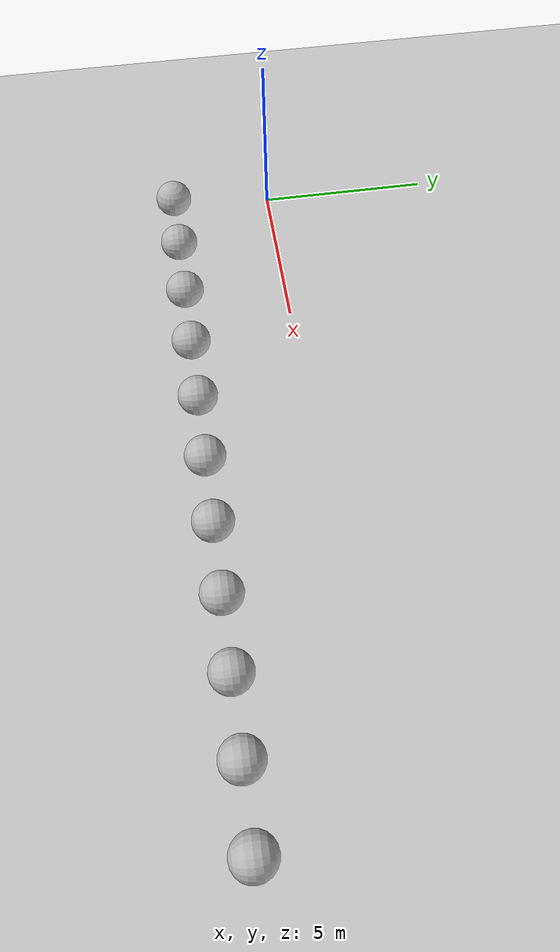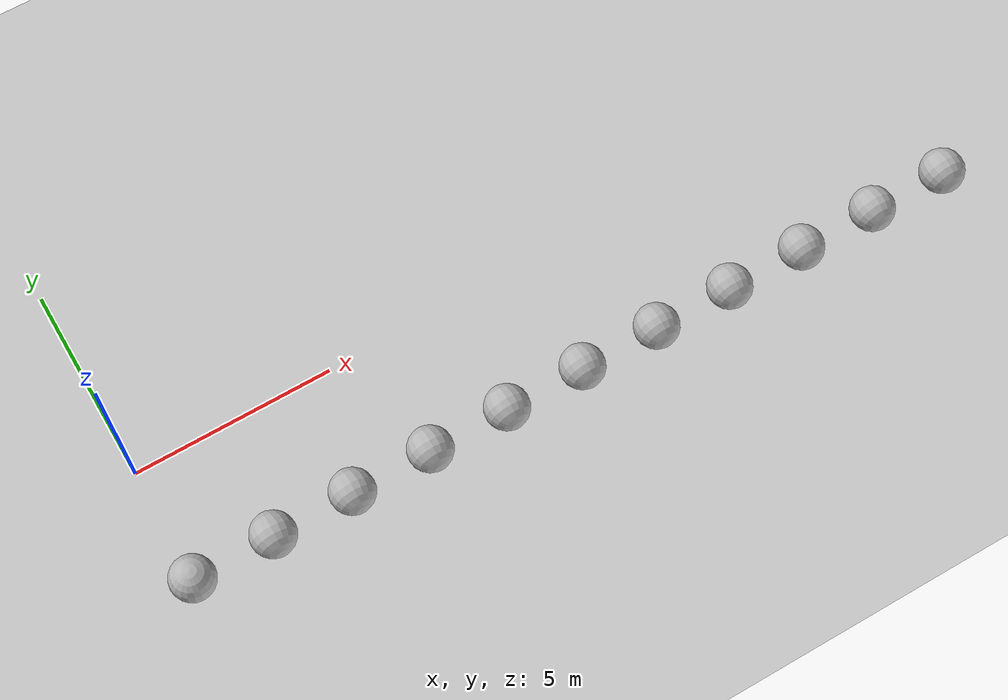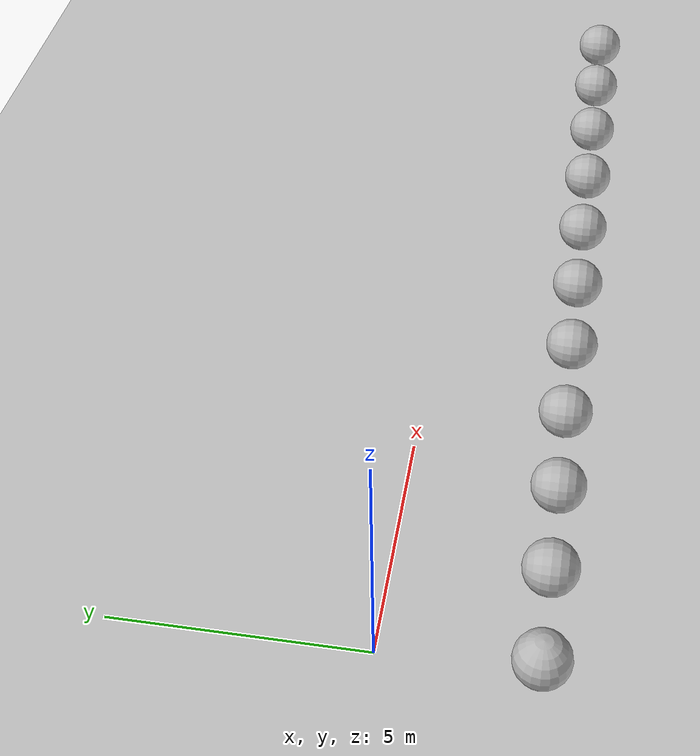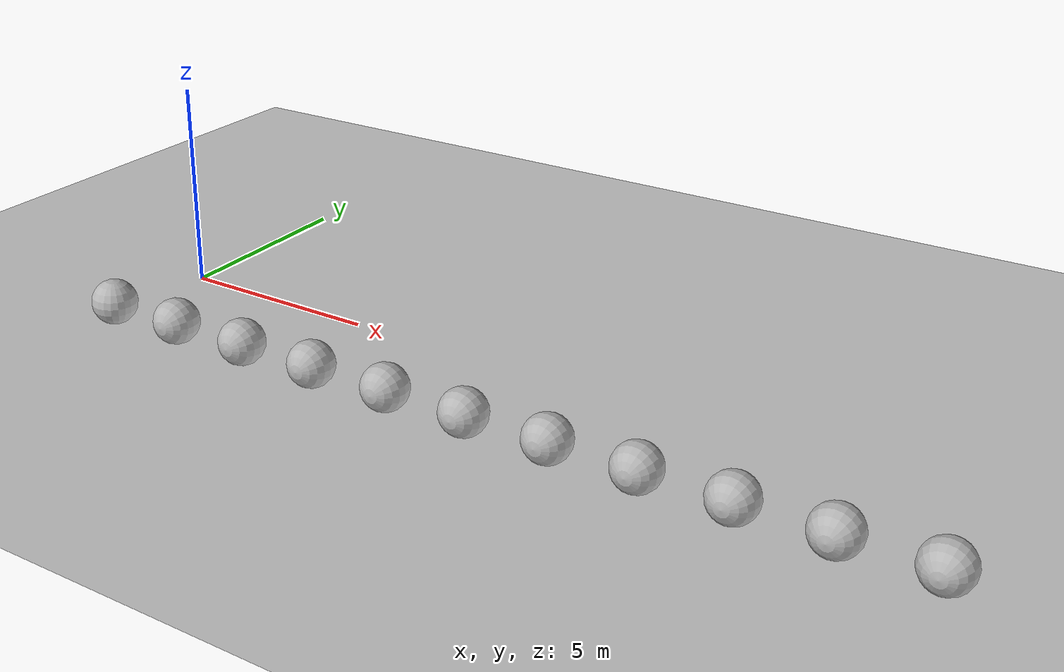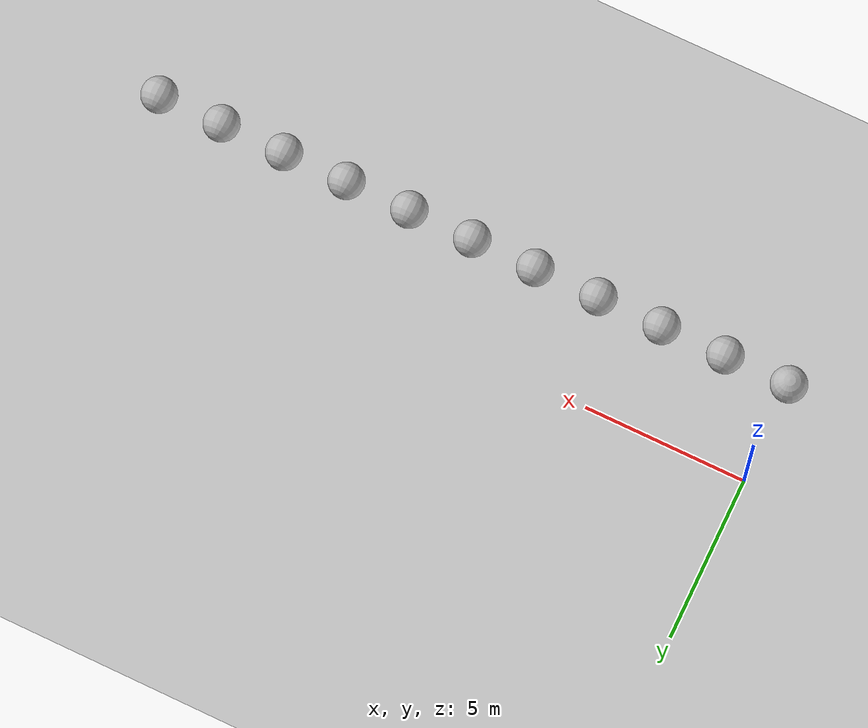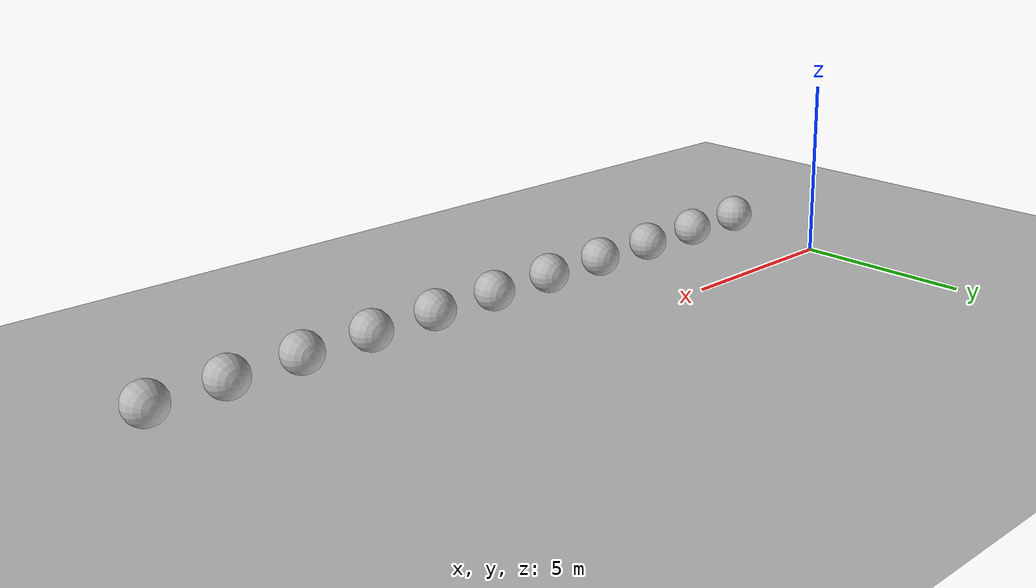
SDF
<?xml version="1.0" ?>
<sdf version="1.4">
  <!-- We use a custom world so that the camera angle is launched correctly -->

  <world name="default">
  <physics type='ode'>
    <max_step_size>0.01</max_step_size>
    <real_time_factor>1</real_time_factor>
    <real_time_update_rate>100</real_time_update_rate>
    <gravity>0 0 -9.8</gravity>
  </physics>

    <include>
      <uri>model://ground_plane</uri>
      <static>1</static>
      <link name='link'>
        <collision name='collision'>
          <geometry>
            <plane>
              <normal>0 0 1</normal>
              <size>100 100</size>
            </plane>
          </geometry>
          <surface>
            <friction>
              <ode>
                <mu>100</mu>
                <mu2>50</mu2>
              </ode>
            </friction>
            <bounce/>
            <contact>
              <ode/>
            </contact>
          </surface>
        </collision>
      </link>
    </include>

    <!-- Global light source -->
    <include>
      <uri>model://sun</uri>
    </include>

    <!-- All the digits -->
    <include>
      <uri>model://ball9</uri>
      <pose>0.0 -3.00 0.5 0.0 0.0 0.0</pose>
    </include>
    <include>
      <uri>model://ball0</uri>
      <pose>2.0 -3.00 0.5 1.5708 0.0 0.0</pose>
    </include>
    <include>
      <uri>model://ball1</uri>
      <pose>4.0 -3.00 0.5 1.5708 0.0 0.0</pose>
    </include>
    <include>
      <uri>model://ball2</uri>
      <pose>6.0 -3.00 0.5 1.5708 0.0 0.0</pose>
    </include>
    <include>
      <uri>model://ball3</uri>
      <pose>8.0 -3.00 0.5 1.5708 0.0 0.0</pose>
    </include>
    <include>
      <uri>model://ball4</uri>
      <pose>10.0 -3.00 0.5 1.5708 0.0 0.0</pose>
    </include>
    <include>
      <uri>model://ball5</uri>
      <pose>12.0 -3.00 0.5 1.5708 0.0 0.0</pose>
    </include>
    <include>
      <uri>model://ball6</uri>
      <pose>14.0 -3.00 0.5 1.5708 0.0 0.0</pose>
    </include>
    <include>
      <uri>model://ball7</uri>
      <pose>16.0 -3.00 0.5 1.5708 0.0 0.0</pose>
    </include>
    <include>
      <uri>model://ball8</uri>
      <pose>18.0 -3.00 0.5 1.5708 0.0 0.0</pose>
    </include>
    <include>
      <uri>model://ball9</uri>
      <pose>20.00 -3.00 0.5 1.5708 0.0 0.0</pose>
    </include>

    <gui fullscreen='0'>
      <camera name='user_camera'>
        <pose>4.927360 -4.376610 3.740080 0.000000 0.275643 2.356190</pose>
        <view_controller>orbit</view_controller>
      </camera>
    </gui>

  </world>
</sdf>

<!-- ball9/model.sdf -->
<sdf version="1.5">
  <model name="ball9">
    <link name="link">
      <inertial>
        <mass>2</mass>
        <inertia>
          <ixx>1</ixx>
          <ixy>0</ixy>
          <ixz>0</ixz>
          <iyy>1</iyy>
          <iyz>0</iyz>
          <izz>1</izz>
        </inertia>
      </inertial>
      <collision name="collision">
        <geometry>
          <sphere>
            <radius>0.55000</radius>
          </sphere>
        </geometry>
        <surface>
       <friction>
         <ode>
           <mu>0.72</mu>
           <mu2>0.72</mu2>
         </ode>
       </friction>
          <bounce/>
          <contact>
            <ode/>
          </contact>
     </surface>
      </collision>
      <visual name="visual">
         <geometry>
          <sphere>
            <radius>0.55000</radius>
          </sphere>
        </geometry>
        <material>
          <script>
            <uri>model://ball9/materials/scripts</uri>
            <uri>model://ball9/materials/textures</uri>
            <name>ball9/Diffuse</name>
          </script>
        </material>
      </visual>
    </link>
  </model>
</sdf>

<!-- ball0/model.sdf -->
<sdf version="1.5">
  <model name="ball0">
    <link name="link">
      <inertial>
        <mass>2</mass>
        <inertia>
          <ixx>1</ixx>
          <ixy>0</ixy>
          <ixz>0</ixz>
          <iyy>1</iyy>
          <iyz>0</iyz>
          <izz>1</izz>
        </inertia>
      </inertial>
      <collision name="collision">
        <geometry>
          <sphere>
            <radius>0.55000</radius>
          </sphere>
        </geometry>
        <surface>
       <friction>
         <ode>
           <mu>0.72</mu>
           <mu2>0.72</mu2>
         </ode>
       </friction>
          <bounce/>
          <contact>
            <ode/>
          </contact>
     </surface>
      </collision>
      <visual name="visual">
         <geometry>
          <sphere>
            <radius>0.55000</radius>
          </sphere>
        </geometry>
        <material>
          <script>
            <uri>model://ball0/materials/scripts</uri>
            <uri>model://ball0/materials/textures</uri>
            <name>ball0/Diffuse</name>
          </script>
        </material>
      </visual>
    </link>
  </model>
</sdf>

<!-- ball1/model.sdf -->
<sdf version="1.5">
  <model name="ball1">
    <link name="link">
      <inertial>
        <mass>2</mass>
        <inertia>
          <ixx>1</ixx>
          <ixy>0</ixy>
          <ixz>0</ixz>
          <iyy>1</iyy>
          <iyz>0</iyz>
          <izz>1</izz>
        </inertia>
      </inertial>
      <collision name="collision">
        <geometry>
          <sphere>
            <radius>0.55000</radius>
          </sphere>
        </geometry>
        <surface>
       <friction>
         <ode>
           <mu>0.72</mu>
           <mu2>0.72</mu2>
         </ode>
       </friction>
          <bounce/>
          <contact>
            <ode/>
          </contact>
     </surface>
      </collision>
      <visual name="visual">
         <geometry>
          <sphere>
            <radius>0.55000</radius>
          </sphere>
        </geometry>
        <material>
          <script>
            <uri>model://ball1/materials/scripts</uri>
            <uri>model://ball1/materials/textures</uri>
            <name>ball1/Diffuse</name>
          </script>
        </material>
      </visual>
    </link>
  </model>
</sdf>

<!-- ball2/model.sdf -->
<sdf version="1.5">
  <model name="ball2">
    <link name="link">
      <inertial>
        <mass>2</mass>
        <inertia>
          <ixx>1</ixx>
          <ixy>0</ixy>
          <ixz>0</ixz>
          <iyy>1</iyy>
          <iyz>0</iyz>
          <izz>1</izz>
        </inertia>
      </inertial>
      <collision name="collision">
        <geometry>
          <sphere>
            <radius>0.55000</radius>
          </sphere>
        </geometry>
        <surface>
       <friction>
         <ode>
           <mu>0.72</mu>
           <mu2>0.72</mu2>
         </ode>
       </friction>
          <bounce/>
          <contact>
            <ode/>
          </contact>
     </surface>
      </collision>
      <visual name="visual">
         <geometry>
          <sphere>
            <radius>0.55000</radius>
          </sphere>
        </geometry>
        <material>
          <script>
            <uri>model://ball2/materials/scripts</uri>
            <uri>model://ball2/materials/textures</uri>
            <name>ball2/Diffuse</name>
          </script>
        </material>
      </visual>
    </link>
  </model>
</sdf>

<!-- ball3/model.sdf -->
<sdf version="1.5">
  <model name="ball3">
    <link name="link">
      <inertial>
        <mass>2</mass>
        <inertia>
          <ixx>1</ixx>
          <ixy>0</ixy>
          <ixz>0</ixz>
          <iyy>1</iyy>
          <iyz>0</iyz>
          <izz>1</izz>
        </inertia>
      </inertial>
      <collision name="collision">
        <geometry>
          <sphere>
            <radius>0.55000</radius>
          </sphere>
        </geometry>
        <surface>
       <friction>
         <ode>
           <mu>0.72</mu>
           <mu2>0.72</mu2>
         </ode>
       </friction>
          <bounce/>
          <contact>
            <ode/>
          </contact>
     </surface>
      </collision>
      <visual name="visual">
         <geometry>
          <sphere>
            <radius>0.55000</radius>
          </sphere>
        </geometry>
        <material>
          <script>
            <uri>model://ball3/materials/scripts</uri>
            <uri>model://ball3/materials/textures</uri>
            <name>ball3/Diffuse</name>
          </script>
        </material>
      </visual>
    </link>
  </model>
</sdf>

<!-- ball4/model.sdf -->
<sdf version="1.5">
  <model name="ball4">
    <link name="link">
      <inertial>
        <mass>2</mass>
        <inertia>
          <ixx>1</ixx>
          <ixy>0</ixy>
          <ixz>0</ixz>
          <iyy>1</iyy>
          <iyz>0</iyz>
          <izz>1</izz>
        </inertia>
      </inertial>
      <collision name="collision">
        <geometry>
          <sphere>
            <radius>0.55000</radius>
          </sphere>
        </geometry>
        <surface>
       <friction>
         <ode>
           <mu>0.72</mu>
           <mu2>0.72</mu2>
         </ode>
       </friction>
          <bounce/>
          <contact>
            <ode/>
          </contact>
     </surface>
      </collision>
      <visual name="visual">
         <geometry>
          <sphere>
            <radius>0.55000</radius>
          </sphere>
        </geometry>
        <material>
          <script>
            <uri>model://ball4/materials/scripts</uri>
            <uri>model://ball4/materials/textures</uri>
            <name>ball4/Diffuse</name>
          </script>
        </material>
      </visual>
    </link>
  </model>
</sdf>

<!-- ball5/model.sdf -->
<sdf version="1.5">
  <model name="ball5">
    <link name="link">
      <inertial>
        <mass>2</mass>
        <inertia>
          <ixx>1</ixx>
          <ixy>0</ixy>
          <ixz>0</ixz>
          <iyy>1</iyy>
          <iyz>0</iyz>
          <izz>1</izz>
        </inertia>
      </inertial>
      <collision name="collision">
        <geometry>
          <sphere>
            <radius>0.55000</radius>
          </sphere>
        </geometry>
        <surface>
       <friction>
         <ode>
           <mu>0.72</mu>
           <mu2>0.72</mu2>
         </ode>
       </friction>
          <bounce/>
          <contact>
            <ode/>
          </contact>
     </surface>
      </collision>
      <visual name="visual">
         <geometry>
          <sphere>
            <radius>0.55000</radius>
          </sphere>
        </geometry>
        <material>
          <script>
            <uri>model://ball5/materials/scripts</uri>
            <uri>model://ball5/materials/textures</uri>
            <name>ball5/Diffuse</name>
          </script>
        </material>
      </visual>
    </link>
  </model>
</sdf>

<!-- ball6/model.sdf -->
<sdf version="1.5">
  <model name="ball6">
    <link name="link">
      <inertial>
        <mass>2</mass>
        <inertia>
          <ixx>1</ixx>
          <ixy>0</ixy>
          <ixz>0</ixz>
          <iyy>1</iyy>
          <iyz>0</iyz>
          <izz>1</izz>
        </inertia>
      </inertial>
      <collision name="collision">
        <geometry>
          <sphere>
            <radius>0.55000</radius>
          </sphere>
        </geometry>
        <surface>
       <friction>
         <ode>
           <mu>0.72</mu>
           <mu2>0.72</mu2>
         </ode>
       </friction>
          <bounce/>
          <contact>
            <ode/>
          </contact>
     </surface>
      </collision>
      <visual name="visual">
         <geometry>
          <sphere>
            <radius>0.55000</radius>
          </sphere>
        </geometry>
        <material>
          <script>
            <uri>model://ball6/materials/scripts</uri>
            <uri>model://ball6/materials/textures</uri>
            <name>ball6/Diffuse</name>
          </script>
        </material>
      </visual>
    </link>
  </model>
</sdf>

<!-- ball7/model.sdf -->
<sdf version="1.5">
  <model name="ball7">
    <link name="link">
      <inertial>
        <mass>2</mass>
        <inertia>
          <ixx>1</ixx>
          <ixy>0</ixy>
          <ixz>0</ixz>
          <iyy>1</iyy>
          <iyz>0</iyz>
          <izz>1</izz>
        </inertia>
      </inertial>
      <collision name="collision">
        <geometry>
          <sphere>
            <radius>0.55000</radius>
          </sphere>
        </geometry>
        <surface>
       <friction>
         <ode>
           <mu>0.72</mu>
           <mu2>0.72</mu2>
         </ode>
       </friction>
          <bounce/>
          <contact>
            <ode/>
          </contact>
     </surface>
      </collision>
      <visual name="visual">
         <geometry>
          <sphere>
            <radius>0.55000</radius>
          </sphere>
        </geometry>
        <material>
          <script>
            <uri>model://ball7/materials/scripts</uri>
            <uri>model://ball7/materials/textures</uri>
            <name>ball7/Diffuse</name>
          </script>
        </material>
      </visual>
    </link>
  </model>
</sdf>

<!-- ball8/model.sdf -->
<sdf version="1.5">
  <model name="ball8">
    <link name="link">
      <inertial>
        <mass>2</mass>
        <inertia>
          <ixx>1</ixx>
          <ixy>0</ixy>
          <ixz>0</ixz>
          <iyy>1</iyy>
          <iyz>0</iyz>
          <izz>1</izz>
        </inertia>
      </inertial>
      <collision name="collision">
        <geometry>
          <sphere>
            <radius>0.55000</radius>
          </sphere>
        </geometry>
        <surface>
       <friction>
         <ode>
           <mu>0.72</mu>
           <mu2>0.72</mu2>
         </ode>
       </friction>
          <bounce/>
          <contact>
            <ode/>
          </contact>
     </surface>
      </collision>
      <visual name="visual">
         <geometry>
          <sphere>
            <radius>0.55000</radius>
          </sphere>
        </geometry>
        <material>
          <script>
            <uri>model://ball8/materials/scripts</uri>
            <uri>model://ball8/materials/textures</uri>
            <name>ball8/Diffuse</name>
          </script>
        </material>
      </visual>
    </link>
  </model>
</sdf>
